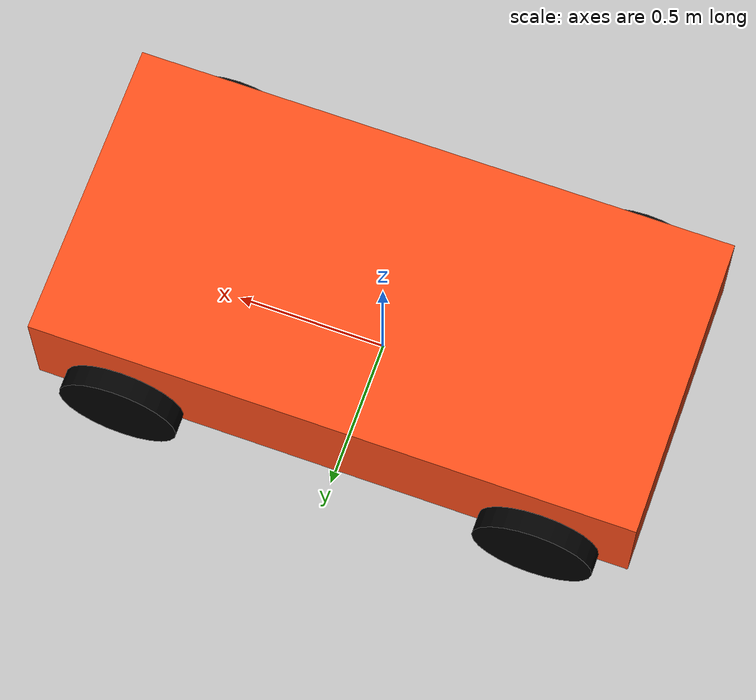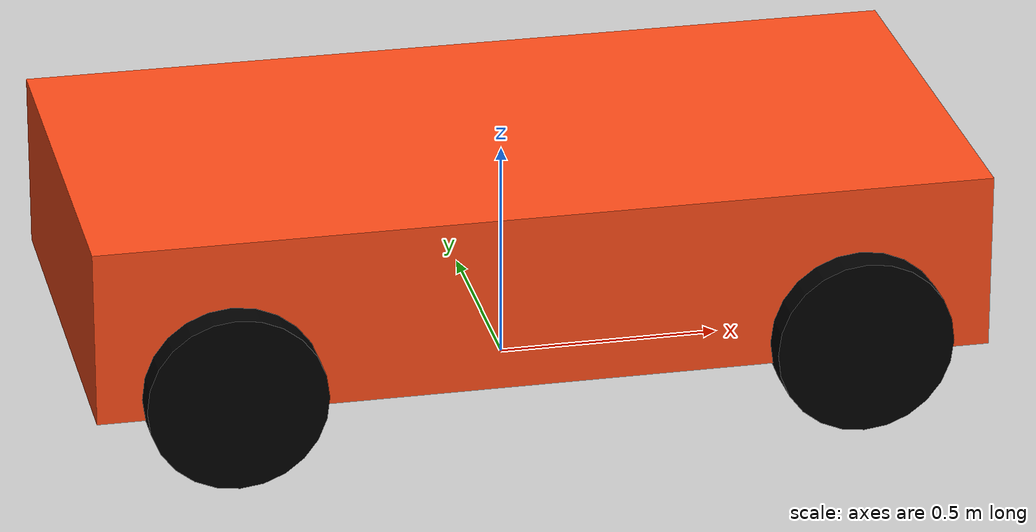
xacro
<?xml version="1.0"?>
<robot xmlns:xacro="http://www.ros.org/wiki/xacro">

    <xacro:include filename="colors.xacro" />
    <xacro:include filename="inertial_macros.xacro" />

    <link name="base_footprint" />

    <joint name="base_joint" type="fixed">
        <parent link="base_footprint" />
        <child link="base_link" />
        <origin xyz="0 0 0.3" rpy="0 0 0" />
    </joint>

    <link name='base_link'>
        <xacro:inertial_box mass="20" x="2" y="1" z="0.4">
            <origin xyz="0 0 0.05" rpy="0 0 0"/>
        </xacro:inertial_box>

        <visual>
          <origin xyz="0 0 0.05" rpy="0 0 0"/>
          <geometry>
            <box size="2 1 0.4"/>
          </geometry>
          <material name="orange" />
        </visual>

        <collision>
          <origin xyz="0 0 0.05" rpy="0 0 0"/>
          <geometry>
            <box size="2 1 0.4"/>
          </geometry>
        </collision>
    </link>

    <gazebo reference="base_link">
        <material>Gazebo/Orange</material>
    </gazebo>

    <link name="right_wheel_rear">
      <collision>
        <origin xyz="0 0 0" rpy="0 1.5708 1.5708" />
        <geometry>
          <cylinder length="0.1" radius="0.2"/>
        </geometry>
        <surface>
          <friction>
            <ode>
              <mu>2.0</mu>
              <mu2>2.0</mu2>
              <fdir1>0 0 1</fdir1>
            </ode>
          </friction>
        </surface>
      </collision>

      <visual>
        <origin xyz="0 0 0" rpy="0 1.5708 1.5708" />
        <geometry>
          <cylinder length="0.1" radius="0.2"/>
        </geometry>
        <material name="black"/>
      </visual>

      <xacro:inertial_cylinder mass="1.0" length="0.1" radius="0.2">
            <origin xyz="0 0 0" rpy="0 1.5708 1.5708"/>
      </xacro:inertial_cylinder>

    </link>

    <gazebo reference="right_wheel_rear">
      <material>Gazebo/Black</material>
    </gazebo>

    <joint name="base_right_wheel_rear_joint" type="continuous">
      <parent link="base_link"/>
      <child link="right_wheel_rear"/>
      <origin xyz="-0.7 0.52 -0.1" rpy="0 0 0" />
      <axis xyz="0 1 0" rpy="0 0 0" />
      <limit effort="100" velocity="10"/>
      <dynamics damping="0.1" friction="0.2"/>
    </joint>

    <link name="left_wheel_rear">
      <collision>
        <origin xyz="0 0 0" rpy="0 1.5708 1.5708" />
        <geometry>
          <cylinder length="0.1" radius="0.2"/>
        </geometry>
          <surface>
            <friction>
              <ode>
                <mu>2.0</mu>
                <mu2>2.0</mu2>
                <fdir1>0 0 1</fdir1>
              </ode>
            </friction>
          </surface>
      </collision>

      <visual>
        <origin xyz="0 0 0" rpy="0 1.5708 1.5708" />
        <geometry>
          <cylinder length="0.1" radius="0.2"/>
        </geometry>
        <material name="black"/>
      </visual>

      <xacro:inertial_cylinder mass="1.0" length="0.1" radius="0.2">
            <origin xyz="0 0 0" rpy="0 1.5708 1.5708"/>
      </xacro:inertial_cylinder>

    </link>

    <gazebo reference="left_wheel_rear">
      <material>Gazebo/Black</material>
    </gazebo>

    <joint name="base_left_wheel_rear_joint" type="continuous">
      <parent link="base_link"/>
      <child link="left_wheel_rear"/>
      <origin xyz="-0.7 -0.52 -0.1" rpy="0 0 0" />
      <axis xyz="0 1 0" rpy="0 0 0" />
      <limit effort="100" velocity="10"/>
      <dynamics damping="0.1" friction="0.2"/>
    </joint>

    <link name="right_wheel_front">
      <collision>
        <origin xyz="0 0 0" rpy="0 1.5708 1.5708" />
        <geometry>
          <cylinder length="0.1" radius="0.2"/>
        </geometry>
          <surface>
            <friction>
              <ode>
                <mu>2.0</mu>
                <mu2>2.0</mu2>
                <fdir1>0 0 1</fdir1>
              </ode>
            </friction>
          </surface>
      </collision>

      <visual>
        <origin xyz="0 0 0" rpy="0 1.5708 1.5708" />
        <geometry>
          <cylinder length="0.1" radius="0.2"/>
        </geometry>
        <material name="black"/>
      </visual>

      <xacro:inertial_cylinder mass="1.0" length="0.1" radius="0.2">
        <origin xyz="0 0 0" rpy="0 1.5708 1.5708"/>
      </xacro:inertial_cylinder>

    </link>

    <gazebo reference="right_wheel_front">
      <material>Gazebo/Black</material>
    </gazebo>

    <link name="left_wheel_front">
      <collision>
        <origin xyz="0 0 0" rpy="0 1.5708 1.5708" />
        <geometry>
          <cylinder length="0.1" radius="0.2"/>
        </geometry>
          <surface>
            <friction>
              <ode>
                <mu>2.0</mu>
                <mu2>4.0</mu2>
                <fdir1>0 0 1</fdir1>
              </ode>
            </friction>
          </surface>
      </collision>

      <visual>
        <origin xyz="0 0 0" rpy="0 1.5708 1.5708" />
        <geometry>
          <cylinder length="0.1" radius="0.2"/>
        </geometry>
        <material name="black"/>
      </visual>

      <xacro:inertial_cylinder mass="1.0" length="0.1" radius="0.2">
          <origin xyz="0 0 0" rpy="0 1.5708 1.5708"/>
      </xacro:inertial_cylinder>
    </link>

    <gazebo reference="left_wheel_front">
      <material>Gazebo/Black</material>
    </gazebo>

    <link name="front_left_wheel_steering_link">
      <collision>
        <origin xyz="0 0 0" rpy="0 0 0"/>
        <geometry>
          <cylinder radius="0.04" length="0.2"/>
        </geometry>
      </collision>

      <visual>
        <origin xyz="0 0 0" rpy="0 0 0"/>
        <geometry>
          <cylinder radius="0.04" length="0.2"/>
        </geometry>
        <material name="black"/>
      </visual>

      <xacro:inertial_cylinder mass="0.4" length="0.2" radius="0.04">
        <origin xyz="0 0 0" rpy="0 0 0"/>
      </xacro:inertial_cylinder>
    </link>

    <link name="front_right_wheel_steering_link">
      <collision>
        <origin xyz="0 0 0" rpy="0 0 0"/>
        <geometry>
          <cylinder radius="0.04" length="0.2"/>
        </geometry>
      </collision>

      <visual>
        <origin xyz="0 0 0" rpy="0 0 0"/>
        <geometry>
          <cylinder radius="0.04" length="0.2"/>
        </geometry>
        <material name="black"/>
      </visual>

      <xacro:inertial_cylinder mass="0.4" length="0.2" radius="0.04">
        <origin xyz="0 0 0" rpy="0 0 0"/>
      </xacro:inertial_cylinder>
    </link>

    <joint name="front_left_wheel_steering_joint" type="revolute">
      <parent link="base_link"/>
      <child link="front_left_wheel_steering_link"/>
      <origin xyz="0.7 -0.52 -0.1" rpy="0 0 0"/>
      <axis xyz="0 0 1" rpy="0 0 0"/>
      <limit lower="-0.6" upper="0.6" velocity="1.0" effort="25"/>
    </joint>

    <joint name="front_right_wheel_steering_joint" type="revolute">
      <parent link="base_link"/>
      <child link="front_right_wheel_steering_link"/>
      <origin xyz="0.7 0.52 -0.1" rpy="0 0 0"/>
      <axis xyz="0 0 1" rpy="0 0 0"/>
      <limit lower="-0.6" upper="0.6" velocity="1.0" effort="25"/>
    </joint>

    <joint name="front_left_wheel_joint" type="continuous">
      <parent link="front_left_wheel_steering_link"/>
      <child link="left_wheel_front"/>
      <origin xyz="0 0 0" rpy="0 0 0"/>
      <axis xyz="0 1 0" rpy="0 0 0"/>
      <limit effort="100" velocity="10"/>
      <dynamics damping="0.1" friction="0.2"/>
    </joint>

    <joint name="front_right_wheel_joint" type="continuous">
      <parent link="front_right_wheel_steering_link"/>
      <child link="right_wheel_front"/>
      <origin xyz="0 0 0" rpy="0 0 0"/>
      <axis xyz="0 1 0" rpy="0 0 0"/>
      <limit effort="100" velocity="10"/>
      <dynamics damping="0.1" friction="0.2"/>
    </joint>

</robot>

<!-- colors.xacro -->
<robot xmlns:xacro="http://www.ros.org/wiki/xacro">

    <material name="grey">
        <color rgba="0.7 0.7 0.7 1"/>
    </material>

    <material name="green">
        <color rgba="0 0.6 0 1"/>
    </material>

    <material name="white">
        <color rgba="1 1 1 1"/>
    </material>

    <material name="black">
        <color rgba="0 0 0 1"/>
    </material>

    <material name="orange">
        <color rgba="1 0.3 0.1 1"/>
    </material>

</robot>
